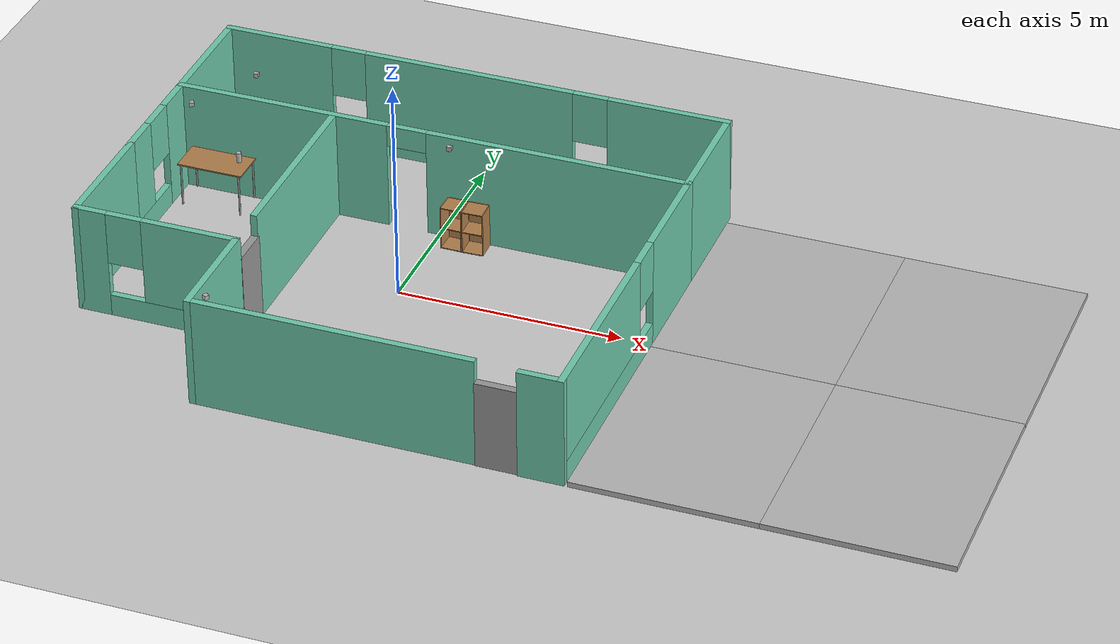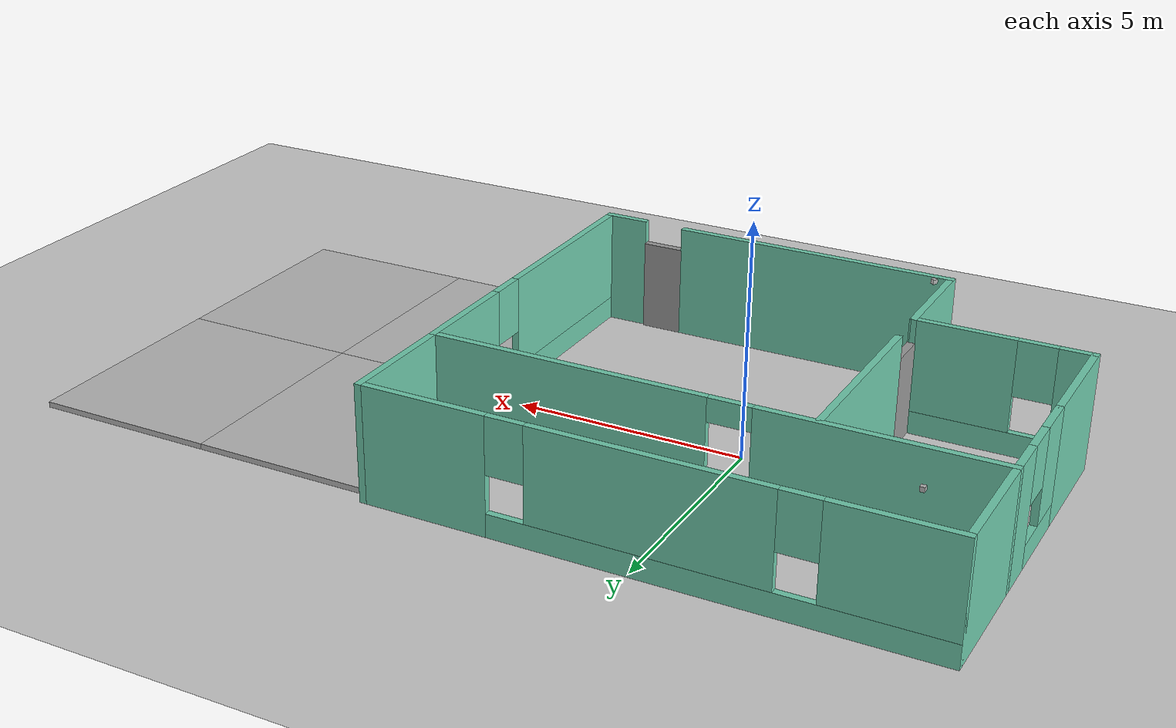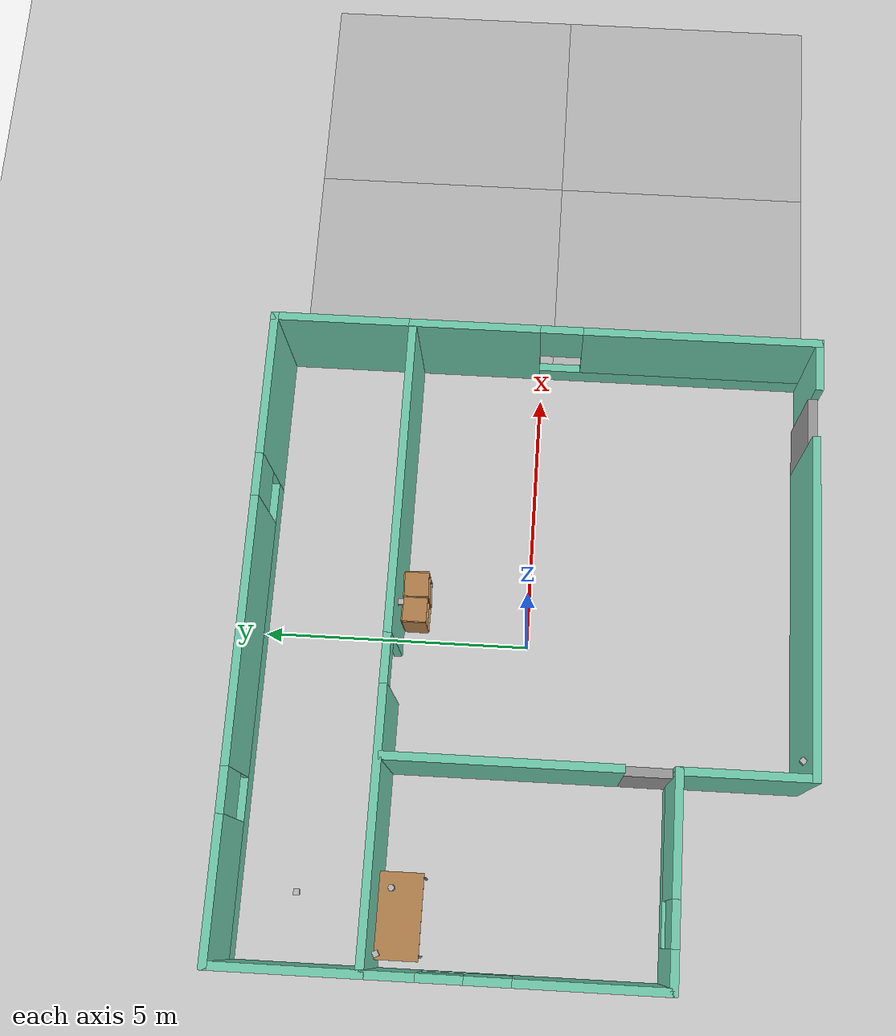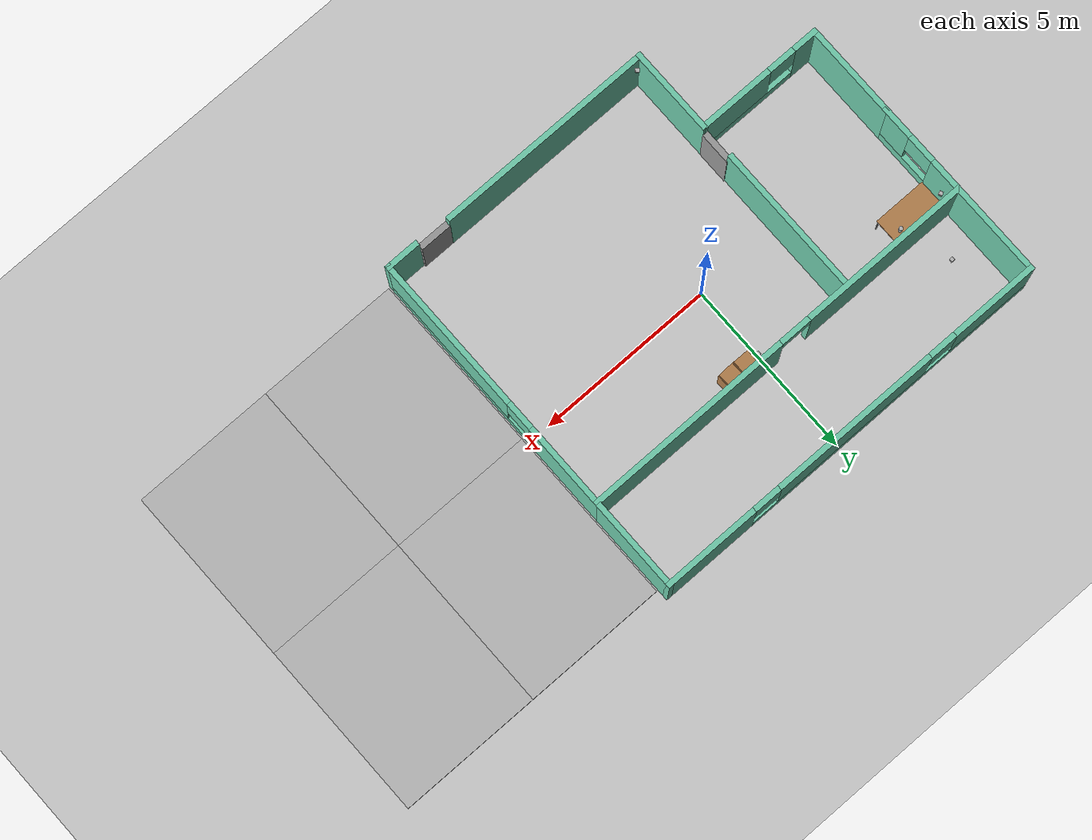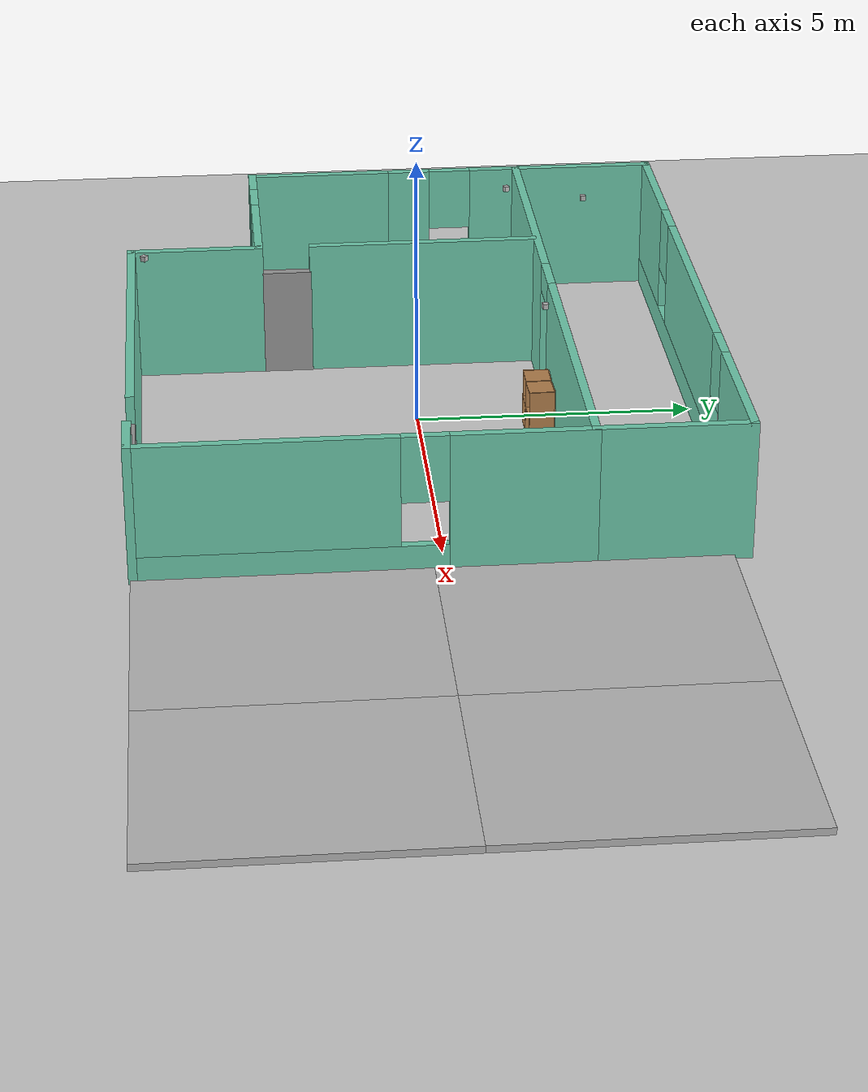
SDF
<sdf version="1.7">
 <world name="default">
  <light name="sun" type="directional">
   <pose>0 0 10 0 -0 0</pose>
   <diffuse>0.8 0.8 0.8 1</diffuse>
   <specular>0.2 0.2 0.2 1</specular>
   <attenuation>
    <range>1000</range>
    <constant>0.9</constant>
    <linear>0.01</linear>
    <quadratic>0.001</quadratic>
   </attenuation>
   <direction>-0.5 0.1 -0.9</direction>
   <spot><inner_angle>0</inner_angle><outer_angle>0</outer_angle><falloff>0</falloff></spot>
  </light>
  <model name="ground_plane">
   <static>1</static>
   <link name="link">
    <collision name="collision">
     <geometry><plane><normal>0 0 1</normal><size>100 100</size></plane></geometry>
     <surface>
      <contact><collide_bitmask>65535</collide_bitmask></contact>
      <friction><ode><mu>100</mu><mu2>50</mu2></ode></friction>
     </surface>
    </collision>
    <visual name="visual">
     <cast_shadows>0</cast_shadows>
     <geometry><plane><normal>0 0 1</normal><size>100 100</size></plane></geometry>
     <material>
      <script><uri>file://media/materials/scripts/gazebo.material</uri><name>Gazebo/Grey</name></script>
     </material>
    </visual>
   </link>
  </model>
  <gravity>0 0 -9.8</gravity>
  <magnetic_field>6e-06 2.3e-05 -4.2e-05</magnetic_field>
  <atmosphere type="adiabatic"/>
  <physics type="ode">
   <max_step_size>0.001</max_step_size>
   <real_time_factor>1</real_time_factor>
   <real_time_update_rate>1000</real_time_update_rate>
  </physics>
  <scene><ambient>0.4 0.4 0.4 1</ambient><background>0.7 0.7 0.7 1</background><shadows>1</shadows></scene>
  <spherical_coordinates>
   <surface_model>EARTH_WGS84</surface_model>
   <latitude_deg>0</latitude_deg>
   <longitude_deg>0</longitude_deg>
   <elevation>0</elevation>
   <heading_deg>0</heading_deg>
  </spherical_coordinates>
  <model name="room001">
   <pose>-0.213552 -0.04766 0 0 -0 0</pose>
   <link name="Door_2">
    <collision name="Door_2_Collision">
     <geometry><box><size>0.9 0.17 2</size></box></geometry>
     <pose>0 0 1 0 -0 0</pose>
    </collision>
    <visual name="Door_2_Visual">
     <pose>0 0 1 0 -0 0</pose>
     <geometry><box><size>0.9 0.17 2</size></box></geometry>
     <material>
      <script><uri>file://media/materials/scripts/gazebo.material</uri><name>Gazebo/Grey</name></script>
     </material>
    </visual>
    <pose>-2.20168 -2.18508 0 0 -0 1.56688</pose>
   </link>
   <link name="Door_3">
    <collision name="Door_3_Collision">
     <geometry><box><size>0.9 0.17 2</size></box></geometry>
     <pose>0 0 1 0 -0 0</pose>
    </collision>
    <visual name="Door_3_Visual">
     <pose>0 0 1 0 -0 0</pose>
     <geometry><box><size>0.9 0.17 2</size></box></geometry>
     <material>
      <script><uri>file://media/materials/scripts/gazebo.material</uri><name>Gazebo/Grey</name></script>
     </material>
    </visual>
    <pose>4.41485 -5.05994 0 0 -0 0</pose>
   </link>
   <link name="Wall_1">
    <pose>-5.8 1.2 0 0 -0 -1.5708</pose>
    <visual name="Wall_1_Visual_0">
     <pose>-0.878724 0 1.25 0 -0 0</pose>
     <geometry><box><size>0.992553 0.15 2.5</size></box></geometry>
     <material>
      <script><uri>file://media/materials/scripts/gazebo.material</uri><name>Gazebo/Grey</name></script>
      <ambient>0.435294 0.796078 0.67451 1</ambient>
     </material>
     <meta><layer>0</layer></meta>
    </visual>
    <collision name="Wall_1_Collision_0">
     <geometry><box><size>0.992553 0.15 2.5</size></box></geometry>
     <pose>-0.878724 0 1.25 0 -0 0</pose>
    </collision>
    <visual name="Wall_1_Visual_1">
     <pose>0.496276 0 0.25 0 -0 0</pose>
     <geometry><box><size>1.75745 0.15 0.5</size></box></geometry>
     <material>
      <script><uri>file://media/materials/scripts/gazebo.material</uri><name>Gazebo/Grey</name></script>
      <ambient>0.435294 0.796078 0.67451 1</ambient>
     </material>
     <meta><layer>0</layer></meta>
    </visual>
    <collision name="Wall_1_Collision_1">
     <geometry><box><size>1.75745 0.15 0.5</size></box></geometry>
     <pose>0.496276 0 0.25 0 -0 0</pose>
    </collision>
    <visual name="Wall_1_Visual_2">
     <pose>0.896276 0 1.5 0 -0 0</pose>
     <geometry><box><size>0.957447 0.15 2</size></box></geometry>
     <material>
      <script><uri>file://media/materials/scripts/gazebo.material</uri><name>Gazebo/Grey</name></script>
      <ambient>0.435294 0.796078 0.67451 1</ambient>
     </material>
     <meta><layer>0</layer></meta>
    </visual>
    <collision name="Wall_1_Collision_2">
     <geometry><box><size>0.957447 0.15 2</size></box></geometry>
     <pose>0.896276 0 1.5 0 -0 0</pose>
    </collision>
    <visual name="Wall_1_Visual_3">
     <pose>0.017553 0 1.9 0 -0 0</pose>
     <geometry><box><size>0.8 0.15 1.2</size></box></geometry>
     <material>
      <script><uri>file://media/materials/scripts/gazebo.material</uri><name>Gazebo/Grey</name></script>
      <ambient>0.435294 0.796078 0.67451 1</ambient>
     </material>
     <meta><layer>0</layer></meta>
    </visual>
    <collision name="Wall_1_Collision_3">
     <geometry><box><size>0.8 0.15 1.2</size></box></geometry>
     <pose>0.017553 0 1.9 0 -0 0</pose>
    </collision>
   </link>
   <link name="Wall_10">
    <collision name="Wall_10_Collision">
     <geometry><box><size>2.5 0.15 2.5</size></box></geometry>
     <pose>0 0 1.25 0 -0 0</pose>
    </collision>
    <visual name="Wall_10_Visual">
     <pose>0 0 1.25 0 -0 0</pose>
     <geometry><box><size>2.5 0.15 2.5</size></box></geometry>
     <material>
      <script><uri>file://media/materials/scripts/gazebo.material</uri><name>Gazebo/Grey</name></script>
      <ambient>0.435294 0.796078 0.67451 1</ambient>
     </material>
     <meta><layer>0</layer></meta>
    </visual>
    <pose>-2.2 -3.875 0 0 -0 -1.5708</pose>
   </link>
   <link name="Wall_13">
    <collision name="Wall_13_Collision">
     <geometry><box><size>6.25 0.15 2.5</size></box></geometry>
     <pose>0 0 1.25 0 -0 0</pose>
    </collision>
    <visual name="Wall_13_Visual">
     <pose>0 0 1.25 0 -0 0</pose>
     <geometry><box><size>6.25 0.15 2.5</size></box></geometry>
     <material>
      <script><uri>file://media/materials/scripts/gazebo.material</uri><name>Gazebo/Grey</name></script>
      <ambient>0.435294 0.796078 0.67451 1</ambient>
     </material>
     <meta><layer>0</layer></meta>
    </visual>
    <pose>0.85 -5.05 0 0 -0 0</pose>
   </link>
   <link name="Wall_22">
    <collision name="Wall_22_Collision">
     <geometry><box><size>4.25 0.15 2.5</size></box></geometry>
     <pose>0 0 1.25 0 -0 0</pose>
    </collision>
    <visual name="Wall_22_Visual">
     <pose>0 0 1.25 0 -0 0</pose>
     <geometry><box><size>4.25 0.15 2.5</size></box></geometry>
     <material>
      <script><uri>file://media/materials/scripts/gazebo.material</uri><name>Gazebo/Grey</name></script>
      <ambient>0.435294 0.796078 0.67451 1</ambient>
     </material>
     <meta><layer>0</layer></meta>
    </visual>
    <pose>-2.21219 0.358281 0 0 -0 1.5708</pose>
   </link>
   <link name="Wall_24">
    <collision name="Wall_24_Collision">
     <geometry><box><size>2.75 0.15 2.5</size></box></geometry>
     <pose>0 0 1.25 0 -0 0</pose>
    </collision>
    <visual name="Wall_24_Visual">
     <pose>0 0 1.25 0 -0 0</pose>
     <geometry><box><size>2.75 0.15 2.5</size></box></geometry>
     <material>
      <script><uri>file://media/materials/scripts/gazebo.material</uri><name>Gazebo/Grey</name></script>
      <ambient>0.435294 0.796078 0.67451 1</ambient>
     </material>
     <meta><layer>0</layer></meta>
    </visual>
    <pose>5.8 3.8 0 0 -0 1.5708</pose>
   </link>
   <link name="Wall_25">
    <pose>0 5.1 0 0 -0 3.14159</pose>
    <visual name="Wall_25_Visual_0">
     <pose>-4.48576 0 1.25 0 -0 0</pose>
     <geometry><box><size>2.77847 0.15 2.5</size></box></geometry>
     <material>
      <script><uri>file://media/materials/scripts/gazebo.material</uri><name>Gazebo/Grey</name></script>
      <ambient>0.435294 0.796078 0.67451 1</ambient>
     </material>
     <meta><layer>0</layer></meta>
    </visual>
    <collision name="Wall_25_Collision_0">
     <geometry><box><size>2.77847 0.15 2.5</size></box></geometry>
     <pose>-4.48576 0 1.25 0 -0 0</pose>
    </collision>
    <visual name="Wall_25_Visual_1">
     <pose>1.38923 0 0.25 0 -0 0</pose>
     <geometry><box><size>8.97153 0.15 0.5</size></box></geometry>
     <material>
      <script><uri>file://media/materials/scripts/gazebo.material</uri><name>Gazebo/Grey</name></script>
      <ambient>0.435294 0.796078 0.67451 1</ambient>
     </material>
     <meta><layer>0</layer></meta>
    </visual>
    <collision name="Wall_25_Collision_1">
     <geometry><box><size>8.97153 0.15 0.5</size></box></geometry>
     <pose>1.38923 0 0.25 0 -0 0</pose>
    </collision>
    <visual name="Wall_25_Visual_2">
     <pose>0.122998 0 1.5 0 -0 0</pose>
     <geometry><box><size>4.83906 0.15 2</size></box></geometry>
     <material>
      <script><uri>file://media/materials/scripts/gazebo.material</uri><name>Gazebo/Grey</name></script>
      <ambient>0.435294 0.796078 0.67451 1</ambient>
     </material>
     <meta><layer>0</layer></meta>
    </visual>
    <collision name="Wall_25_Collision_2">
     <geometry><box><size>4.83906 0.15 2</size></box></geometry>
     <pose>0.122998 0 1.5 0 -0 0</pose>
    </collision>
    <visual name="Wall_25_Visual_3">
     <pose>4.60876 0 1.5 0 -0 0</pose>
     <geometry><box><size>2.53247 0.15 2</size></box></geometry>
     <material>
      <script><uri>file://media/materials/scripts/gazebo.material</uri><name>Gazebo/Grey</name></script>
      <ambient>0.435294 0.796078 0.67451 1</ambient>
     </material>
     <meta><layer>0</layer></meta>
    </visual>
    <collision name="Wall_25_Collision_3">
     <geometry><box><size>2.53247 0.15 2</size></box></geometry>
     <pose>4.60876 0 1.5 0 -0 0</pose>
    </collision>
    <visual name="Wall_25_Visual_4">
     <pose>-2.69653 0 1.9 0 -0 0</pose>
     <geometry><box><size>0.8 0.15 1.2</size></box></geometry>
     <material>
      <script><uri>file://media/materials/scripts/gazebo.material</uri><name>Gazebo/Grey</name></script>
      <ambient>0.435294 0.796078 0.67451 1</ambient>
     </material>
     <meta><layer>0</layer></meta>
    </visual>
    <collision name="Wall_25_Collision_4">
     <geometry><box><size>0.8 0.15 1.2</size></box></geometry>
     <pose>-2.69653 0 1.9 0 -0 0</pose>
    </collision>
    <visual name="Wall_25_Visual_5">
     <pose>2.94253 0 1.9 0 -0 0</pose>
     <geometry><box><size>0.8 0.15 1.2</size></box></geometry>
     <material>
      <script><uri>file://media/materials/scripts/gazebo.material</uri><name>Gazebo/Grey</name></script>
      <ambient>0.435294 0.796078 0.67451 1</ambient>
     </material>
     <meta><layer>0</layer></meta>
    </visual>
    <collision name="Wall_25_Collision_5">
     <geometry><box><size>0.8 0.15 1.2</size></box></geometry>
     <pose>2.94253 0 1.9 0 -0 0</pose>
    </collision>
   </link>
   <link name="Wall_26">
    <collision name="Wall_26_Collision">
     <geometry><box><size>2.75 0.15 2.5</size></box></geometry>
     <pose>0 0 1.25 0 -0 0</pose>
    </collision>
    <visual name="Wall_26_Visual">
     <pose>0 0 1.25 0 -0 0</pose>
     <geometry><box><size>2.75 0.15 2.5</size></box></geometry>
     <material>
      <script><uri>file://media/materials/scripts/gazebo.material</uri><name>Gazebo/Grey</name></script>
      <ambient>0.435294 0.796078 0.67451 1</ambient>
     </material>
     <meta><layer>0</layer></meta>
    </visual>
    <pose>-5.8 3.8 0 0 -0 -1.5708</pose>
   </link>
   <link name="Wall_29">
    <pose>5.8 -1.3 0 0 -0 -1.5708</pose>
    <visual name="Wall_29_Visual_0">
     <pose>-2.64051 0 1.25 0 -0 0</pose>
     <geometry><box><size>2.46899 0.15 2.5</size></box></geometry>
     <material>
      <script><uri>file://media/materials/scripts/gazebo.material</uri><name>Gazebo/Grey</name></script>
      <ambient>0.435294 0.796078 0.67451 1</ambient>
     </material>
     <meta><layer>0</layer></meta>
    </visual>
    <collision name="Wall_29_Collision_0">
     <geometry><box><size>2.46899 0.15 2.5</size></box></geometry>
     <pose>-2.64051 0 1.25 0 -0 0</pose>
    </collision>
    <visual name="Wall_29_Visual_1">
     <pose>1.23449 0 0.25 0 -0 0</pose>
     <geometry><box><size>5.28101 0.15 0.5</size></box></geometry>
     <material>
      <script><uri>file://media/materials/scripts/gazebo.material</uri><name>Gazebo/Grey</name></script>
      <ambient>0.435294 0.796078 0.67451 1</ambient>
     </material>
     <meta><layer>0</layer></meta>
    </visual>
    <collision name="Wall_29_Collision_1">
     <geometry><box><size>5.28101 0.15 0.5</size></box></geometry>
     <pose>1.23449 0 0.25 0 -0 0</pose>
    </collision>
    <visual name="Wall_29_Visual_2">
     <pose>1.63449 0 1.5 0 -0 0</pose>
     <geometry><box><size>4.48101 0.15 2</size></box></geometry>
     <material>
      <script><uri>file://media/materials/scripts/gazebo.material</uri><name>Gazebo/Grey</name></script>
      <ambient>0.435294 0.796078 0.67451 1</ambient>
     </material>
     <meta><layer>0</layer></meta>
    </visual>
    <collision name="Wall_29_Collision_2">
     <geometry><box><size>4.48101 0.15 2</size></box></geometry>
     <pose>1.63449 0 1.5 0 -0 0</pose>
    </collision>
    <visual name="Wall_29_Visual_3">
     <pose>-1.00601 0 1.9 0 -0 0</pose>
     <geometry><box><size>0.8 0.15 1.2</size></box></geometry>
     <material>
      <script><uri>file://media/materials/scripts/gazebo.material</uri><name>Gazebo/Grey</name></script>
      <ambient>0.435294 0.796078 0.67451 1</ambient>
     </material>
     <meta><layer>0</layer></meta>
    </visual>
    <collision name="Wall_29_Collision_3">
     <geometry><box><size>0.8 0.15 1.2</size></box></geometry>
     <pose>-1.00601 0 1.9 0 -0 0</pose>
    </collision>
   </link>
   <link name="Wall_3">
    <pose>0 2.5 0 0 -0 0</pose>
    <visual name="Wall_3_Visual_0">
     <pose>-3.42325 0 1.25 0 -0 0</pose>
     <geometry><box><size>4.90351 0.15 2.5</size></box></geometry>
     <material>
      <script><uri>file://media/materials/scripts/gazebo.material</uri><name>Gazebo/Grey</name></script>
      <ambient>0.435294 0.796078 0.67451 1</ambient>
     </material>
     <meta><layer>0</layer></meta>
    </visual>
    <collision name="Wall_3_Collision_0">
     <geometry><box><size>4.90351 0.15 2.5</size></box></geometry>
     <pose>-3.42325 0 1.25 0 -0 0</pose>
    </collision>
    <visual name="Wall_3_Visual_1">
     <pose>2.90175 0 1.25 0 -0 0</pose>
     <geometry><box><size>5.94649 0.15 2.5</size></box></geometry>
     <material>
      <script><uri>file://media/materials/scripts/gazebo.material</uri><name>Gazebo/Grey</name></script>
      <ambient>0.435294 0.796078 0.67451 1</ambient>
     </material>
     <meta><layer>0</layer></meta>
    </visual>
    <collision name="Wall_3_Collision_1">
     <geometry><box><size>5.94649 0.15 2.5</size></box></geometry>
     <pose>2.90175 0 1.25 0 -0 0</pose>
    </collision>
    <visual name="Wall_3_Visual_2">
     <pose>-0.521491 0 2.25 0 -0 0</pose>
     <geometry><box><size>0.9 0.15 0.5</size></box></geometry>
     <material>
      <script><uri>file://media/materials/scripts/gazebo.material</uri><name>Gazebo/Grey</name></script>
      <ambient>0.435294 0.796078 0.67451 1</ambient>
     </material>
     <meta><layer>0</layer></meta>
    </visual>
    <collision name="Wall_3_Collision_2">
     <geometry><box><size>0.9 0.15 0.5</size></box></geometry>
     <pose>-0.521491 0 2.25 0 -0 0</pose>
    </collision>
   </link>
   <link name="Wall_30">
    <collision name="Wall_30_Collision">
     <geometry><box><size>1 0.15 2.5</size></box></geometry>
     <pose>0 0 1.25 0 -0 0</pose>
    </collision>
    <visual name="Wall_30_Visual">
     <pose>0 0 1.25 0 -0 0</pose>
     <geometry><box><size>1 0.15 2.5</size></box></geometry>
     <material>
      <script><uri>file://media/materials/scripts/gazebo.material</uri><name>Gazebo/Grey</name></script>
      <ambient>0.435294 0.796078 0.67451 1</ambient>
     </material>
     <meta><layer>0</layer></meta>
    </visual>
    <pose>5.375 -5.1 0 0 -0 3.14159</pose>
   </link>
   <link name="Wall_6">
    <collision name="Wall_6_Collision">
     <geometry><box><size>2.75 0.15 2.5</size></box></geometry>
     <pose>0 0 1.25 0 -0 0</pose>
    </collision>
    <visual name="Wall_6_Visual">
     <pose>0 0 1.25 0 -0 0</pose>
     <geometry><box><size>2.75 0.15 2.5</size></box></geometry>
     <material>
      <script><uri>file://media/materials/scripts/gazebo.material</uri><name>Gazebo/Grey</name></script>
      <ambient>0.435294 0.796078 0.67451 1</ambient>
     </material>
     <meta><layer>0</layer></meta>
    </visual>
    <pose>-5.8 -1.4 0 0 -0 -1.5708</pose>
   </link>
   <link name="Wall_7">
    <pose>-4 -2.7 0 0 -0 0</pose>
    <visual name="Wall_7_Visual_0">
     <pose>-1.49498 0 1.25 0 -0 0</pose>
     <geometry><box><size>0.760046 0.15 2.5</size></box></geometry>
     <material>
      <script><uri>file://media/materials/scripts/gazebo.material</uri><name>Gazebo/Grey</name></script>
      <ambient>0.435294 0.796078 0.67451 1</ambient>
     </material>
     <meta><layer>0</layer></meta>
    </visual>
    <collision name="Wall_7_Collision_0">
     <geometry><box><size>0.760046 0.15 2.5</size></box></geometry>
     <pose>-1.49498 0 1.25 0 -0 0</pose>
    </collision>
    <visual name="Wall_7_Visual_1">
     <pose>0.380023 0 0.25 0 -0 0</pose>
     <geometry><box><size>2.98995 0.15 0.5</size></box></geometry>
     <material>
      <script><uri>file://media/materials/scripts/gazebo.material</uri><name>Gazebo/Grey</name></script>
      <ambient>0.435294 0.796078 0.67451 1</ambient>
     </material>
     <meta><layer>0</layer></meta>
    </visual>
    <collision name="Wall_7_Collision_1">
     <geometry><box><size>2.98995 0.15 0.5</size></box></geometry>
     <pose>0.380023 0 0.25 0 -0 0</pose>
    </collision>
    <visual name="Wall_7_Visual_2">
     <pose>0.780023 0 1.5 0 -0 0</pose>
     <geometry><box><size>2.18995 0.15 2</size></box></geometry>
     <material>
      <script><uri>file://media/materials/scripts/gazebo.material</uri><name>Gazebo/Grey</name></script>
      <ambient>0.435294 0.796078 0.67451 1</ambient>
     </material>
     <meta><layer>0</layer></meta>
    </visual>
    <collision name="Wall_7_Collision_2">
     <geometry><box><size>2.18995 0.15 2</size></box></geometry>
     <pose>0.780023 0 1.5 0 -0 0</pose>
    </collision>
    <visual name="Wall_7_Visual_3">
     <pose>-0.714954 0 1.9 0 -0 0</pose>
     <geometry><box><size>0.8 0.15 1.2</size></box></geometry>
     <material>
      <script><uri>file://media/materials/scripts/gazebo.material</uri><name>Gazebo/Grey</name></script>
      <ambient>0.435294 0.796078 0.67451 1</ambient>
     </material>
     <meta><layer>0</layer></meta>
    </visual>
    <collision name="Wall_7_Collision_3">
     <geometry><box><size>0.8 0.15 1.2</size></box></geometry>
     <pose>-0.714954 0 1.9 0 -0 0</pose>
    </collision>
   </link>
   <static>1</static>
  </model>
  <model name="table">
   <static>1</static>
   <link name="link">
    <collision name="surface">
     <pose>0 0 1 0 -0 0</pose>
     <geometry><box><size>1.5 0.8 0.03</size></box></geometry>
     <surface><friction><ode><mu>0.6</mu><mu2>0.6</mu2></ode></friction></surface>
    </collision>
    <visual name="visual1">
     <pose>0 0 1 0 -0 0</pose>
     <geometry><box><size>1.5 0.8 0.03</size></box></geometry>
     <material>
      <script><uri>file://media/materials/scripts/gazebo.material</uri><name>Gazebo/Wood</name></script>
     </material>
    </visual>
    <collision name="front_left_leg">
     <pose>0.68 0.38 0.5 0 -0 0</pose>
     <geometry><cylinder><radius>0.02</radius><length>1</length></cylinder></geometry>
    </collision>
    <visual name="front_left_leg">
     <pose>0.68 0.38 0.5 0 -0 0</pose>
     <geometry><cylinder><radius>0.02</radius><length>1</length></cylinder></geometry>
     <material>
      <script><uri>file://media/materials/scripts/gazebo.material</uri><name>Gazebo/Grey</name></script>
     </material>
    </visual>
    <collision name="front_right_leg">
     <pose>0.68 -0.38 0.5 0 -0 0</pose>
     <geometry><cylinder><radius>0.02</radius><length>1</length></cylinder></geometry>
    </collision>
    <visual name="front_right_leg">
     <pose>0.68 -0.38 0.5 0 -0 0</pose>
     <geometry><cylinder><radius>0.02</radius><length>1</length></cylinder></geometry>
     <material>
      <script><uri>file://media/materials/scripts/gazebo.material</uri><name>Gazebo/Grey</name></script>
     </material>
    </visual>
    <collision name="back_right_leg">
     <pose>-0.68 -0.38 0.5 0 -0 0</pose>
     <geometry><cylinder><radius>0.02</radius><length>1</length></cylinder></geometry>
    </collision>
    <visual name="back_right_leg">
     <pose>-0.68 -0.38 0.5 0 -0 0</pose>
     <geometry><cylinder><radius>0.02</radius><length>1</length></cylinder></geometry>
     <material>
      <script><uri>file://media/materials/scripts/gazebo.material</uri><name>Gazebo/Grey</name></script>
     </material>
    </visual>
    <collision name="back_left_leg">
     <pose>-0.68 0.38 0.5 0 -0 0</pose>
     <geometry><cylinder><radius>0.02</radius><length>1</length></cylinder></geometry>
    </collision>
    <visual name="back_left_leg">
     <pose>-0.68 0.38 0.5 0 -0 0</pose>
     <geometry><cylinder><radius>0.02</radius><length>1</length></cylinder></geometry>
     <material>
      <script><uri>file://media/materials/scripts/gazebo.material</uri><name>Gazebo/Grey</name></script>
     </material>
    </visual>
   </link>
   <pose>-5.04133 1.98949 0 0 -0 0</pose>
  </model>
  <model name="beer">
   <link name="link">
    <pose>0 0 0.115 0 -0 0</pose>
    <inertial>
     <mass>0.39</mass>
     <inertia><ixx>0.00058</ixx><ixy>0</ixy><ixz>0</ixz><iyy>0.00058</iyy><iyz>0</iyz><izz>0.00019</izz></inertia>
    </inertial>
    <collision name="collision">
     <geometry><cylinder><radius>0.055</radius><length>0.23</length></cylinder></geometry>
    </collision>
    <visual name="visual">
     <geometry><cylinder><radius>0.055</radius><length>0.23</length></cylinder></geometry>
     <material>
      <script>
       <uri>model://beer/materials/scripts</uri>
       <uri>model://beer/materials/textures</uri>
       <name>Beer/Diffuse</name>
      </script>
     </material>
    </visual>
   </link>
   <pose>-4.57476 2.14148 1.015 -3e-06 -1.6e-05 0.033933</pose>
  </model>
  <model name="camera">
   <pose>-5.67814 2.23508 2.19913 1e-06 -0 -1.10479</pose>
   <link name="link">
    <inertial>
     <mass>0.1</mass>
     <inertia>
      <ixx>0.000166667</ixx>
      <iyy>0.000166667</iyy>
      <izz>0.000166667</izz>
      <ixy>0</ixy>
      <ixz>0</ixz>
      <iyz>0</iyz>
     </inertia>
    </inertial>
    <collision name="collision"><geometry><box><size>0.1 0.1 0.1</size></box></geometry></collision>
    <visual name="visual"><geometry><box><size>0.1 0.1 0.1</size></box></geometry></visual>
    <sensor name="camera" type="camera">
     <camera>
      <horizontal_fov>1.047</horizontal_fov>
      <image><width>320</width><height>240</height></image>
      <clip><near>0.1</near><far>100</far></clip>
     </camera>
     <always_on>1</always_on>
     <update_rate>30</update_rate>
     <visualize>1</visualize>
    </sensor>
   </link>
  </model>
  <model name="cabinet">
   <static>1</static>
   <link name="cabinet_bottom_plate">
    <inertial>
     <pose>0 0 -1 0 -0 0</pose>
     <inertia><ixx>2.05</ixx><ixy>0</ixy><ixz>0</ixz><iyy>2.05</iyy><iyz>0</iyz><izz>2.05</izz></inertia>
     <mass>25</mass>
    </inertial>
    <collision name="cabinet_bottom_plate_geom">
     <pose>0 0 0.01 0 -0 0</pose>
     <geometry><box><size>0.45 0.45 0.02</size></box></geometry>
    </collision>
    <visual name="cabinet_bottom_plate_geom_visual">
     <pose>0 0 0.01 0 -0 0</pose>
     <geometry><box><size>0.45 0.45 0.02</size></box></geometry>
     <material>
      <script><uri>file://media/materials/scripts/gazebo.material</uri><name>Gazebo/Wood</name></script>
     </material>
    </visual>
    <collision name="cabinet_bottom_plate_geom_cabinet_back_plate">
     <pose>0.235 0 0.51 0 -0 0</pose>
     <geometry><box><size>0.02 0.45 1.02</size></box></geometry>
    </collision>
    <visual name="cabinet_bottom_plate_geom_cabinet_back_plate_visual">
     <pose>0.235 0 0.51 0 -0 0</pose>
     <geometry><box><size>0.02 0.45 1.02</size></box></geometry>
     <material>
      <script><uri>file://media/materials/scripts/gazebo.material</uri><name>Gazebo/Wood</name></script>
     </material>
    </visual>
    <collision name="cabinet_bottom_plate_geom_cabinet_left_plate">
     <pose>0 0.235 0.51 0 -0 0</pose>
     <geometry><box><size>0.45 0.02 1.02</size></box></geometry>
    </collision>
    <visual name="cabinet_bottom_plate_geom_cabinet_left_plate_visual">
     <pose>0 0.235 0.51 0 -0 0</pose>
     <geometry><box><size>0.45 0.02 1.02</size></box></geometry>
     <material>
      <script><uri>file://media/materials/scripts/gazebo.material</uri><name>Gazebo/Wood</name></script>
     </material>
    </visual>
    <collision name="cabinet_bottom_plate_geom_cabinet_middle_plate">
     <pose>0 0 0.51 0 -0 0</pose>
     <geometry><box><size>0.45 0.45 0.02</size></box></geometry>
    </collision>
    <visual name="cabinet_bottom_plate_geom_cabinet_middle_plate_visual">
     <pose>0 0 0.51 0 -0 0</pose>
     <geometry><box><size>0.45 0.45 0.02</size></box></geometry>
     <material>
      <script><uri>file://media/materials/scripts/gazebo.material</uri><name>Gazebo/Wood</name></script>
     </material>
    </visual>
    <collision name="cabinet_bottom_plate_geom_cabinet_right_plate">
     <pose>0 -0.235 0.51 0 -0 0</pose>
     <geometry><box><size>0.45 0.02 1.02</size></box></geometry>
    </collision>
    <visual name="cabinet_bottom_plate_geom_cabinet_right_plate_visual">
     <pose>0 -0.235 0.51 0 -0 0</pose>
     <geometry><box><size>0.45 0.02 1.02</size></box></geometry>
     <material>
      <script><uri>file://media/materials/scripts/gazebo.material</uri><name>Gazebo/Wood</name></script>
     </material>
    </visual>
    <collision name="cabinet_bottom_plate_geom_cabinet_top_plate">
     <pose>0 0 1.01 0 -0 0</pose>
     <geometry><box><size>0.45 0.45 0.02</size></box></geometry>
    </collision>
    <visual name="cabinet_bottom_plate_geom_cabinet_top_plate_visual">
     <pose>0 0 1.01 0 -0 0</pose>
     <geometry><box><size>0.45 0.45 0.02</size></box></geometry>
     <material>
      <script><uri>file://media/materials/scripts/gazebo.material</uri><name>Gazebo/Wood</name></script>
     </material>
    </visual>
   </link>
   <pose>0.444176 2.12531 0 0 -0 1.55689</pose>
  </model>
  <model name="cabinet_clone">
   <static>1</static>
   <link name="cabinet_bottom_plate">
    <inertial>
     <pose>0 0 -1 0 -0 0</pose>
     <inertia><ixx>2.05</ixx><ixy>0</ixy><ixz>0</ixz><iyy>2.05</iyy><iyz>0</iyz><izz>2.05</izz></inertia>
     <mass>25</mass>
    </inertial>
    <collision name="cabinet_bottom_plate_geom">
     <pose>0 0 0.01 0 -0 0</pose>
     <geometry><box><size>0.45 0.45 0.02</size></box></geometry>
    </collision>
    <visual name="cabinet_bottom_plate_geom_visual">
     <pose>0 0 0.01 0 -0 0</pose>
     <geometry><box><size>0.45 0.45 0.02</size></box></geometry>
     <material>
      <script><uri>file://media/materials/scripts/gazebo.material</uri><name>Gazebo/Wood</name></script>
     </material>
    </visual>
    <collision name="cabinet_bottom_plate_geom_cabinet_back_plate">
     <pose>0.235 0 0.51 0 -0 0</pose>
     <geometry><box><size>0.02 0.45 1.02</size></box></geometry>
    </collision>
    <visual name="cabinet_bottom_plate_geom_cabinet_back_plate_visual">
     <pose>0.235 0 0.51 0 -0 0</pose>
     <geometry><box><size>0.02 0.45 1.02</size></box></geometry>
     <material>
      <script><uri>file://media/materials/scripts/gazebo.material</uri><name>Gazebo/Wood</name></script>
     </material>
    </visual>
    <collision name="cabinet_bottom_plate_geom_cabinet_left_plate">
     <pose>0 0.235 0.51 0 -0 0</pose>
     <geometry><box><size>0.45 0.02 1.02</size></box></geometry>
    </collision>
    <visual name="cabinet_bottom_plate_geom_cabinet_left_plate_visual">
     <pose>0 0.235 0.51 0 -0 0</pose>
     <geometry><box><size>0.45 0.02 1.02</size></box></geometry>
     <material>
      <script><uri>file://media/materials/scripts/gazebo.material</uri><name>Gazebo/Wood</name></script>
     </material>
    </visual>
    <collision name="cabinet_bottom_plate_geom_cabinet_middle_plate">
     <pose>0 0 0.51 0 -0 0</pose>
     <geometry><box><size>0.45 0.45 0.02</size></box></geometry>
    </collision>
    <visual name="cabinet_bottom_plate_geom_cabinet_middle_plate_visual">
     <pose>0 0 0.51 0 -0 0</pose>
     <geometry><box><size>0.45 0.45 0.02</size></box></geometry>
     <material>
      <script><uri>file://media/materials/scripts/gazebo.material</uri><name>Gazebo/Wood</name></script>
     </material>
    </visual>
    <collision name="cabinet_bottom_plate_geom_cabinet_right_plate">
     <pose>0 -0.235 0.51 0 -0 0</pose>
     <geometry><box><size>0.45 0.02 1.02</size></box></geometry>
    </collision>
    <visual name="cabinet_bottom_plate_geom_cabinet_right_plate_visual">
     <pose>0 -0.235 0.51 0 -0 0</pose>
     <geometry><box><size>0.45 0.02 1.02</size></box></geometry>
     <material>
      <script><uri>file://media/materials/scripts/gazebo.material</uri><name>Gazebo/Wood</name></script>
     </material>
    </visual>
    <collision name="cabinet_bottom_plate_geom_cabinet_top_plate">
     <pose>0 0 1.01 0 -0 0</pose>
     <geometry><box><size>0.45 0.45 0.02</size></box></geometry>
    </collision>
    <visual name="cabinet_bottom_plate_geom_cabinet_top_plate_visual">
     <pose>0 0 1.01 0 -0 0</pose>
     <geometry><box><size>0.45 0.45 0.02</size></box></geometry>
     <material>
      <script><uri>file://media/materials/scripts/gazebo.material</uri><name>Gazebo/Wood</name></script>
     </material>
    </visual>
   </link>
   <pose>0.923283 2.12516 0 0 -0 1.60478</pose>
  </model>
  <model name="camera_0">
   <pose>0.298642 2.27482 2.319 0 -0 -1.50792</pose>
   <link name="link">
    <inertial>
     <mass>0.1</mass>
     <inertia>
      <ixx>0.000166667</ixx>
      <iyy>0.000166667</iyy>
      <izz>0.000166667</izz>
      <ixy>0</ixy>
      <ixz>0</ixz>
      <iyz>0</iyz>
     </inertia>
    </inertial>
    <collision name="collision"><geometry><box><size>0.1 0.1 0.1</size></box></geometry></collision>
    <visual name="visual"><geometry><box><size>0.1 0.1 0.1</size></box></geometry></visual>
    <sensor name="camera" type="camera">
     <camera>
      <horizontal_fov>1.047</horizontal_fov>
      <image><width>320</width><height>240</height></image>
      <clip><near>0.1</near><far>100</far></clip>
     </camera>
     <always_on>1</always_on>
     <update_rate>30</update_rate>
     <visualize>1</visualize>
    </sensor>
   </link>
  </model>
  <model name="mud_box">
   <static>1</static>
   <link name="link">
    <collision name="collision"><geometry><box><size>8 10 0.2</size></box></geometry></collision>
    <visual name="visual_1">
     <pose>-2 2.5 0 0 -0 0</pose>
     <cast_shadows>0</cast_shadows>
     <geometry><box><size>4 5 0.2</size></box></geometry>
     <material>
      <script>
       <uri>model://mud_box/materials/scripts</uri>
       <uri>model://mud_box/materials/textures</uri>
       <name>vrc/mud</name>
      </script>
     </material>
    </visual>
    <visual name="visual_2">
     <pose>2 2.5 0 0 -0 0</pose>
     <cast_shadows>0</cast_shadows>
     <geometry><box><size>4 5 0.2</size></box></geometry>
     <material>
      <script>
       <uri>model://mud_box/materials/scripts</uri>
       <uri>model://mud_box/materials/textures</uri>
       <name>vrc/mud</name>
      </script>
     </material>
    </visual>
    <visual name="visual_3">
     <pose>2 -2.5 0 0 -0 0</pose>
     <cast_shadows>0</cast_shadows>
     <geometry><box><size>4 5 0.2</size></box></geometry>
     <material>
      <script>
       <uri>model://mud_box/materials/scripts</uri>
       <uri>model://mud_box/materials/textures</uri>
       <name>vrc/mud</name>
      </script>
     </material>
    </visual>
    <visual name="visual_4">
     <pose>-2 -2.5 0 0 -0 0</pose>
     <cast_shadows>0</cast_shadows>
     <geometry><box><size>4 5 0.2</size></box></geometry>
     <material>
      <script>
       <uri>model://mud_box/materials/scripts</uri>
       <uri>model://mud_box/materials/textures</uri>
       <name>vrc/mud</name>
      </script>
     </material>
    </visual>
   </link>
   <pose>9.7085 -0.194401 0 0 -0 0</pose>
  </model>
  <model name="camera_clone">
   <pose>-4.75841 3.63324 2.32629 0.012023 1e-05 0.000187</pose>
   <link name="link">
    <inertial>
     <mass>0.1</mass>
     <inertia>
      <ixx>0.000166667</ixx>
      <iyy>0.000166667</iyy>
      <izz>0.000166667</izz>
      <ixy>0</ixy>
      <ixz>0</ixz>
      <iyz>0</iyz>
     </inertia>
    </inertial>
    <collision name="collision"><geometry><box><size>0.1 0.1 0.1</size></box></geometry></collision>
    <visual name="visual"><geometry><box><size>0.1 0.1 0.1</size></box></geometry></visual>
    <sensor name="camera" type="camera">
     <camera>
      <horizontal_fov>1.047</horizontal_fov>
      <image><width>320</width><height>240</height></image>
      <clip><near>0.1</near><far>100</far></clip>
     </camera>
     <always_on>1</always_on>
     <update_rate>30</update_rate>
     <visualize>1</visualize>
    </sensor>
   </link>
  </model>
  <model name="camera_clone_0">
   <pose>-2.12738 -4.85969 2.48011 0 -0 0.923206</pose>
   <link name="link">
    <inertial>
     <mass>0.1</mass>
     <inertia>
      <ixx>0.000166667</ixx>
      <iyy>0.000166667</iyy>
      <izz>0.000166667</izz>
      <ixy>0</ixy>
      <ixz>0</ixz>
      <iyz>0</iyz>
     </inertia>
    </inertial>
    <collision name="collision"><geometry><box><size>0.1 0.1 0.1</size></box></geometry></collision>
    <visual name="visual"><geometry><box><size>0.1 0.1 0.1</size></box></geometry></visual>
    <sensor name="camera" type="camera">
     <camera>
      <horizontal_fov>1.047</horizontal_fov>
      <image><width>320</width><height>240</height></image>
      <clip><near>0.1</near><far>100</far></clip>
     </camera>
     <always_on>1</always_on>
     <update_rate>30</update_rate>
     <visualize>1</visualize>
    </sensor>
   </link>
  </model>
 </world>
</sdf>
